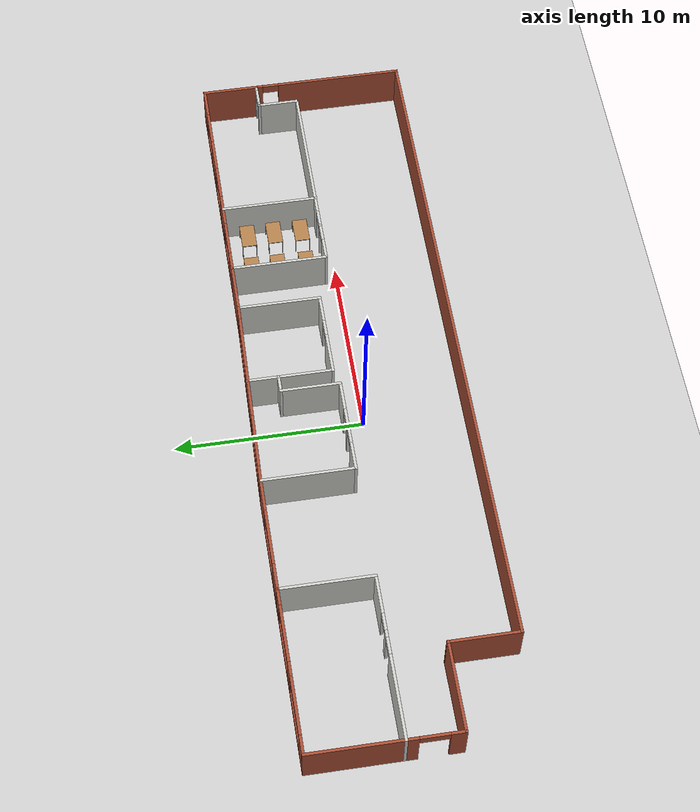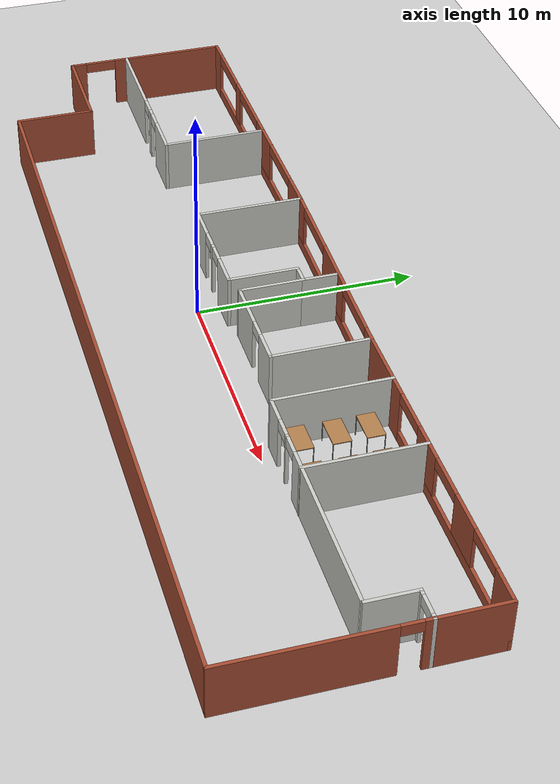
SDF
<sdf version="1.6">
 <world name="default">
  <light name="sun" type="directional">
   <pose>0 0 10 0 -0 0</pose>
   <diffuse>0.8 0.8 0.8 1</diffuse>
   <specular>0.1 0.1 0.1 1</specular>
   <attenuation>
    <range>1000</range>
    <constant>0.9</constant>
    <linear>0.01</linear>
    <quadratic>0.001</quadratic>
   </attenuation>
   <direction>-0.5 0.5 -1</direction>
  </light>
  <model name="ground_plane">
   <static>1</static>
   <link name="link">
    <collision name="collision">
     <geometry><plane><normal>0 0 1</normal><size>100 100</size></plane></geometry>
     <surface><friction><ode><mu>100</mu><mu2>50</mu2></ode></friction></surface>
    </collision>
    <visual name="visual">
     <cast_shadows>0</cast_shadows>
     <geometry><plane><normal>0 0 1</normal><size>100 100</size></plane></geometry>
     <material>
      <script><uri>file://media/materials/scripts/gazebo.material</uri><name>Gazebo/Grey</name></script>
     </material>
    </visual>
   </link>
  </model>
  <gravity>0 0 -9.8</gravity>
  <magnetic_field>6e-06 2.3e-05 -4.2e-05</magnetic_field>
  <atmosphere type="adiabatic"/>
  <physics name="default_physics" default="0" type="ode">
   <max_step_size>0.001</max_step_size>
   <real_time_factor>1</real_time_factor>
   <real_time_update_rate>1000</real_time_update_rate>
  </physics>
  <scene><ambient>0.4 0.4 0.4 1</ambient><background>0.7 0.7 0.7 1</background><shadows>1</shadows></scene>
  <spherical_coordinates>
   <surface_model>EARTH_WGS84</surface_model>
   <latitude_deg>0</latitude_deg>
   <longitude_deg>0</longitude_deg>
   <elevation>0</elevation>
   <heading_deg>0</heading_deg>
  </spherical_coordinates>
  <model name="match_2">
   <pose>1.52494 0.279926 0 0 -0 0</pose>
   <link name="Wall_0">
    <pose>13.175 0.299122 0 0 -0 3.14159</pose>
    <visual name="Wall_0_Visual_0">
     <pose>-1.5933 0 1.25 0 -0 0</pose>
     <geometry><box><size>7.8134 0.15 2.5</size></box></geometry>
     <material>
      <script><uri>file://media/materials/scripts/gazebo.material</uri><name>Gazebo/CeilingTiled</name></script>
      <ambient>1 1 1 1</ambient>
     </material>
    </visual>
    <collision name="Wall_0_Collision_0">
     <geometry><box><size>7.8134 0.15 2.5</size></box></geometry>
     <pose>-1.5933 0 1.25 0 -0 0</pose>
    </collision>
    <visual name="Wall_0_Visual_1">
     <pose>3.27754 0 1.25 0 -0 0</pose>
     <geometry><box><size>0.128288 0.15 2.5</size></box></geometry>
     <material>
      <script><uri>file://media/materials/scripts/gazebo.material</uri><name>Gazebo/CeilingTiled</name></script>
      <ambient>1 1 1 1</ambient>
     </material>
    </visual>
    <collision name="Wall_0_Collision_1">
     <geometry><box><size>0.128288 0.15 2.5</size></box></geometry>
     <pose>3.27754 0 1.25 0 -0 0</pose>
    </collision>
    <visual name="Wall_0_Visual_2">
     <pose>4.87084 0 1.25 0 -0 0</pose>
     <geometry><box><size>1.25831 0.15 2.5</size></box></geometry>
     <material>
      <script><uri>file://media/materials/scripts/gazebo.material</uri><name>Gazebo/CeilingTiled</name></script>
      <ambient>1 1 1 1</ambient>
     </material>
    </visual>
    <collision name="Wall_0_Collision_2">
     <geometry><box><size>1.25831 0.15 2.5</size></box></geometry>
     <pose>4.87084 0 1.25 0 -0 0</pose>
    </collision>
    <visual name="Wall_0_Visual_3">
     <pose>2.7634 0 2.25 0 -0 0</pose>
     <geometry><box><size>0.9 0.15 0.5</size></box></geometry>
     <material>
      <script><uri>file://media/materials/scripts/gazebo.material</uri><name>Gazebo/CeilingTiled</name></script>
      <ambient>1 1 1 1</ambient>
     </material>
    </visual>
    <collision name="Wall_0_Collision_3">
     <geometry><box><size>0.9 0.15 0.5</size></box></geometry>
     <pose>2.7634 0 2.25 0 -0 0</pose>
    </collision>
    <visual name="Wall_0_Visual_4">
     <pose>3.79169 0 2.25 0 -0 0</pose>
     <geometry><box><size>0.9 0.15 0.5</size></box></geometry>
     <material>
      <script><uri>file://media/materials/scripts/gazebo.material</uri><name>Gazebo/CeilingTiled</name></script>
      <ambient>1 1 1 1</ambient>
     </material>
    </visual>
    <collision name="Wall_0_Collision_4">
     <geometry><box><size>0.9 0.15 0.5</size></box></geometry>
     <pose>3.79169 0 2.25 0 -0 0</pose>
    </collision>
   </link>
   <link name="Wall_1">
    <collision name="Wall_1_Collision">
     <geometry><box><size>5.25 0.15 2.5</size></box></geometry>
     <pose>0 0 1.25 0 -0 0</pose>
    </collision>
    <visual name="Wall_1_Visual">
     <pose>0 0 1.25 0 -0 0</pose>
     <geometry><box><size>5.25 0.15 2.5</size></box></geometry>
     <material>
      <script><uri>file://media/materials/scripts/gazebo.material</uri><name>Gazebo/CeilingTiled</name></script>
      <ambient>1 1 1 1</ambient>
     </material>
    </visual>
    <pose>7.75 2.84912 0 0 -0 1.5708</pose>
   </link>
   <link name="Wall_10">
    <pose>-8.45 5.64912 0 0 -0 3.14159</pose>
    <visual name="Wall_10_Visual_0">
     <pose>-2.23689 0 1.25 0 -0 0</pose>
     <geometry><box><size>1.77623 0.15 2.5</size></box></geometry>
     <material>
      <script><uri>file://media/materials/scripts/gazebo.material</uri><name>Gazebo/Bricks</name></script>
      <ambient>1 1 1 1</ambient>
     </material>
    </visual>
    <collision name="Wall_10_Collision_0">
     <geometry><box><size>1.77623 0.15 2.5</size></box></geometry>
     <pose>-2.23689 0 1.25 0 -0 0</pose>
    </collision>
    <visual name="Wall_10_Visual_1">
     <pose>0.888114 0 0.25 0 -0 0</pose>
     <geometry><box><size>4.47377 0.15 0.5</size></box></geometry>
     <material>
      <script><uri>file://media/materials/scripts/gazebo.material</uri><name>Gazebo/Bricks</name></script>
      <ambient>1 1 1 1</ambient>
     </material>
    </visual>
    <collision name="Wall_10_Collision_1">
     <geometry><box><size>4.47377 0.15 0.5</size></box></geometry>
     <pose>0.888114 0 0.25 0 -0 0</pose>
    </collision>
    <visual name="Wall_10_Visual_2">
     <pose>2.38811 0 1.5 0 -0 0</pose>
     <geometry><box><size>1.47377 0.15 2</size></box></geometry>
     <material>
      <script><uri>file://media/materials/scripts/gazebo.material</uri><name>Gazebo/Bricks</name></script>
      <ambient>1 1 1 1</ambient>
     </material>
    </visual>
    <collision name="Wall_10_Collision_2">
     <geometry><box><size>1.47377 0.15 2</size></box></geometry>
     <pose>2.38811 0 1.5 0 -0 0</pose>
    </collision>
    <visual name="Wall_10_Visual_3">
     <pose>0.151228 0 2.25 0 -0 0</pose>
     <geometry><box><size>3 0.15 0.5</size></box></geometry>
     <material>
      <script><uri>file://media/materials/scripts/gazebo.material</uri><name>Gazebo/Bricks</name></script>
      <ambient>1 1 1 1</ambient>
     </material>
    </visual>
    <collision name="Wall_10_Collision_3">
     <geometry><box><size>3 0.15 0.5</size></box></geometry>
     <pose>0.151228 0 2.25 0 -0 0</pose>
    </collision>
   </link>
   <link name="Wall_11">
    <collision name="Wall_11_Collision">
     <geometry><box><size>5 0.15 2.5</size></box></geometry>
     <pose>0 0 1.25 0 -0 0</pose>
    </collision>
    <visual name="Wall_11_Visual">
     <pose>0 0 1.25 0 -0 0</pose>
     <geometry><box><size>5 0.15 2.5</size></box></geometry>
     <material>
      <script><uri>file://media/materials/scripts/gazebo.material</uri><name>Gazebo/CeilingTiled</name></script>
      <ambient>1 1 1 1</ambient>
     </material>
    </visual>
    <pose>-11.5 3.22412 0 0 0 -1.5708</pose>
   </link>
   <link name="Wall_12">
    <pose>-15.8 0.799122 0 0 -0 3.14159</pose>
    <visual name="Wall_12_Visual_0">
     <pose>-3.32042 0 1.25 0 -0 0</pose>
     <geometry><box><size>2.10915 0.15 2.5</size></box></geometry>
     <material>
      <script><uri>file://media/materials/scripts/gazebo.material</uri><name>Gazebo/CeilingTiled</name></script>
      <ambient>1 1 1 1</ambient>
     </material>
    </visual>
    <collision name="Wall_12_Collision_0">
     <geometry><box><size>2.10915 0.15 2.5</size></box></geometry>
     <pose>-3.32042 0 1.25 0 -0 0</pose>
    </collision>
    <visual name="Wall_12_Visual_1">
     <pose>-1.17223 0 1.25 0 -0 0</pose>
     <geometry><box><size>0.387222 0.15 2.5</size></box></geometry>
     <material>
      <script><uri>file://media/materials/scripts/gazebo.material</uri><name>Gazebo/CeilingTiled</name></script>
      <ambient>1 1 1 1</ambient>
     </material>
    </visual>
    <collision name="Wall_12_Collision_1">
     <geometry><box><size>0.387222 0.15 2.5</size></box></geometry>
     <pose>-1.17223 0 1.25 0 -0 0</pose>
    </collision>
    <visual name="Wall_12_Visual_2">
     <pose>2.14819 0 1.25 0 -0 0</pose>
     <geometry><box><size>4.45362 0.15 2.5</size></box></geometry>
     <material>
      <script><uri>file://media/materials/scripts/gazebo.material</uri><name>Gazebo/CeilingTiled</name></script>
      <ambient>1 1 1 1</ambient>
     </material>
    </visual>
    <collision name="Wall_12_Collision_2">
     <geometry><box><size>4.45362 0.15 2.5</size></box></geometry>
     <pose>2.14819 0 1.25 0 -0 0</pose>
    </collision>
    <visual name="Wall_12_Visual_3">
     <pose>-1.81584 0 2.25 0 -0 0</pose>
     <geometry><box><size>0.9 0.15 0.5</size></box></geometry>
     <material>
      <script><uri>file://media/materials/scripts/gazebo.material</uri><name>Gazebo/CeilingTiled</name></script>
      <ambient>1 1 1 1</ambient>
     </material>
    </visual>
    <collision name="Wall_12_Collision_3">
     <geometry><box><size>0.9 0.15 0.5</size></box></geometry>
     <pose>-1.81584 0 2.25 0 -0 0</pose>
    </collision>
    <visual name="Wall_12_Visual_4">
     <pose>-0.528624 0 2.25 0 -0 0</pose>
     <geometry><box><size>0.9 0.15 0.5</size></box></geometry>
     <material>
      <script><uri>file://media/materials/scripts/gazebo.material</uri><name>Gazebo/CeilingTiled</name></script>
      <ambient>1 1 1 1</ambient>
     </material>
    </visual>
    <collision name="Wall_12_Collision_4">
     <geometry><box><size>0.9 0.15 0.5</size></box></geometry>
     <pose>-0.528624 0 2.25 0 -0 0</pose>
    </collision>
   </link>
   <link name="Wall_13">
    <pose>-20.1 -0.625878 0 0 0 -1.5708</pose>
    <visual name="Wall_13_Visual_0">
     <pose>-1.14846 0 1.25 0 -0 0</pose>
     <geometry><box><size>0.703089 0.15 2.5</size></box></geometry>
     <material>
      <script><uri>file://media/materials/scripts/gazebo.material</uri><name>Gazebo/Bricks</name></script>
      <ambient>1 1 1 1</ambient>
     </material>
    </visual>
    <collision name="Wall_13_Collision_0">
     <geometry><box><size>0.703089 0.15 2.5</size></box></geometry>
     <pose>-1.14846 0 1.25 0 -0 0</pose>
    </collision>
    <visual name="Wall_13_Visual_1">
     <pose>1.10154 0 1.25 0 -0 0</pose>
     <geometry><box><size>0.796911 0.15 2.5</size></box></geometry>
     <material>
      <script><uri>file://media/materials/scripts/gazebo.material</uri><name>Gazebo/Bricks</name></script>
      <ambient>1 1 1 1</ambient>
     </material>
    </visual>
    <collision name="Wall_13_Collision_1">
     <geometry><box><size>0.796911 0.15 2.5</size></box></geometry>
     <pose>1.10154 0 1.25 0 -0 0</pose>
    </collision>
    <visual name="Wall_13_Visual_2">
     <pose>-0.046911 0 2.25 0 -0 0</pose>
     <geometry><box><size>1.5 0.15 0.5</size></box></geometry>
     <material>
      <script><uri>file://media/materials/scripts/gazebo.material</uri><name>Gazebo/Bricks</name></script>
      <ambient>1 1 1 1</ambient>
     </material>
    </visual>
    <collision name="Wall_13_Collision_2">
     <geometry><box><size>1.5 0.15 0.5</size></box></geometry>
     <pose>-0.046911 0 2.25 0 -0 0</pose>
    </collision>
   </link>
   <link name="Wall_14">
    <collision name="Wall_14_Collision">
     <geometry><box><size>4.75 0.15 2.5</size></box></geometry>
     <pose>0 0 1.25 0 -0 0</pose>
    </collision>
    <visual name="Wall_14_Visual">
     <pose>0 0 1.25 0 -0 0</pose>
     <geometry><box><size>4.75 0.15 2.5</size></box></geometry>
     <material>
      <script><uri>file://media/materials/scripts/gazebo.material</uri><name>Gazebo/Bricks</name></script>
      <ambient>1 1 1 1</ambient>
     </material>
    </visual>
    <pose>-17.8 -2.05088 0 0 -0 0</pose>
   </link>
   <link name="Wall_15">
    <collision name="Wall_15_Collision">
     <geometry><box><size>3.75 0.15 2.5</size></box></geometry>
     <pose>0 0 1.25 0 -0 0</pose>
    </collision>
    <visual name="Wall_15_Visual">
     <pose>0 0 1.25 0 -0 0</pose>
     <geometry><box><size>3.75 0.15 2.5</size></box></geometry>
     <material>
      <script><uri>file://media/materials/scripts/gazebo.material</uri><name>Gazebo/Bricks</name></script>
      <ambient>1 1 1 1</ambient>
     </material>
    </visual>
    <pose>-15.5 -3.85088 0 0 0 -1.5708</pose>
   </link>
   <link name="Wall_16">
    <collision name="Wall_16_Collision">
     <geometry><box><size>35.75 0.15 2.5</size></box></geometry>
     <pose>0 0 1.25 0 -0 0</pose>
    </collision>
    <visual name="Wall_16_Visual">
     <pose>0 0 1.25 0 -0 0</pose>
     <geometry><box><size>35.75 0.15 2.5</size></box></geometry>
     <material>
      <script><uri>file://media/materials/scripts/gazebo.material</uri><name>Gazebo/Bricks</name></script>
      <ambient>1 1 1 1</ambient>
     </material>
    </visual>
    <pose>2.3 -5.65088 0 0 -0 0</pose>
   </link>
   <link name="Wall_17">
    <pose>20.1 -1.60088 0 0 -0 1.5708</pose>
    <visual name="Wall_17_Visual_0">
     <pose>-0.667736 0 1.25 0 -0 0</pose>
     <geometry><box><size>6.91453 0.15 2.5</size></box></geometry>
     <material>
      <script><uri>file://media/materials/scripts/gazebo.material</uri><name>Gazebo/Bricks</name></script>
      <ambient>1 1 1 1</ambient>
     </material>
    </visual>
    <collision name="Wall_17_Collision_0">
     <geometry><box><size>6.91453 0.15 2.5</size></box></geometry>
     <pose>-0.667736 0 1.25 0 -0 0</pose>
    </collision>
    <visual name="Wall_17_Visual_1">
     <pose>3.90726 0 1.25 0 -0 0</pose>
     <geometry><box><size>0.435472 0.15 2.5</size></box></geometry>
     <material>
      <script><uri>file://media/materials/scripts/gazebo.material</uri><name>Gazebo/Bricks</name></script>
      <ambient>1 1 1 1</ambient>
     </material>
    </visual>
    <collision name="Wall_17_Collision_1">
     <geometry><box><size>0.435472 0.15 2.5</size></box></geometry>
     <pose>3.90726 0 1.25 0 -0 0</pose>
    </collision>
    <visual name="Wall_17_Visual_2">
     <pose>3.23953 0 2.25 0 -0 0</pose>
     <geometry><box><size>0.9 0.15 0.5</size></box></geometry>
     <material>
      <script><uri>file://media/materials/scripts/gazebo.material</uri><name>Gazebo/Bricks</name></script>
      <ambient>1 1 1 1</ambient>
     </material>
    </visual>
    <collision name="Wall_17_Collision_2">
     <geometry><box><size>0.9 0.15 0.5</size></box></geometry>
     <pose>3.23953 0 2.25 0 -0 0</pose>
    </collision>
   </link>
   <link name="Wall_18">
    <pose>19.425 2.44912 0 0 -0 3.14159</pose>
    <visual name="Wall_18_Visual_0">
     <pose>-0.601949 0 1.25 0 -0 0</pose>
     <geometry><box><size>0.296101 0.15 2.5</size></box></geometry>
     <material>
      <script><uri>file://media/materials/scripts/gazebo.material</uri><name>Gazebo/CeilingTiled</name></script>
      <ambient>1 1 1 1</ambient>
     </material>
    </visual>
    <collision name="Wall_18_Collision_0">
     <geometry><box><size>0.296101 0.15 2.5</size></box></geometry>
     <pose>-0.601949 0 1.25 0 -0 0</pose>
    </collision>
    <visual name="Wall_18_Visual_1">
     <pose>0.598051 0 1.25 0 -0 0</pose>
     <geometry><box><size>0.303899 0.15 2.5</size></box></geometry>
     <material>
      <script><uri>file://media/materials/scripts/gazebo.material</uri><name>Gazebo/CeilingTiled</name></script>
      <ambient>1 1 1 1</ambient>
     </material>
    </visual>
    <collision name="Wall_18_Collision_1">
     <geometry><box><size>0.303899 0.15 2.5</size></box></geometry>
     <pose>0.598051 0 1.25 0 -0 0</pose>
    </collision>
    <visual name="Wall_18_Visual_2">
     <pose>-0.003899 0 2.25 0 -0 0</pose>
     <geometry><box><size>0.9 0.15 0.5</size></box></geometry>
     <material>
      <script><uri>file://media/materials/scripts/gazebo.material</uri><name>Gazebo/CeilingTiled</name></script>
      <ambient>1 1 1 1</ambient>
     </material>
    </visual>
    <collision name="Wall_18_Collision_2">
     <geometry><box><size>0.9 0.15 0.5</size></box></geometry>
     <pose>-0.003899 0 2.25 0 -0 0</pose>
    </collision>
   </link>
   <link name="Wall_19">
    <collision name="Wall_19_Collision">
     <geometry><box><size>2.25 0.15 2.5</size></box></geometry>
     <pose>0 0 1.25 0 -0 0</pose>
    </collision>
    <visual name="Wall_19_Visual">
     <pose>0 0 1.25 0 -0 0</pose>
     <geometry><box><size>2.25 0.15 2.5</size></box></geometry>
     <material>
      <script><uri>file://media/materials/scripts/gazebo.material</uri><name>Gazebo/CeilingTiled</name></script>
      <ambient>1 1 1 1</ambient>
     </material>
    </visual>
    <pose>18.75 1.39912 0 0 0 -1.5708</pose>
   </link>
   <link name="Wall_2">
    <collision name="Wall_2_Collision">
     <geometry><box><size>2.75 0.15 2.5</size></box></geometry>
     <pose>0 0 1.25 0 -0 0</pose>
    </collision>
    <visual name="Wall_2_Visual">
     <pose>0 0 1.25 0 -0 0</pose>
     <geometry><box><size>2.75 0.15 2.5</size></box></geometry>
     <material>
      <script><uri>file://media/materials/scripts/gazebo.material</uri><name>Gazebo/Bricks</name></script>
      <ambient>1 1 1 1</ambient>
     </material>
    </visual>
    <pose>6.45 5.39912 0 0 -0 3.14159</pose>
   </link>
   <link name="Wall_21">
    <pose>13.925 5.39912 0 0 -0 0</pose>
    <visual name="Wall_21_Visual_0">
     <pose>-5.70798 0 1.25 0 -0 0</pose>
     <geometry><box><size>1.08404 0.15 2.5</size></box></geometry>
     <material>
      <script><uri>file://media/materials/scripts/gazebo.material</uri><name>Gazebo/Bricks</name></script>
      <ambient>1 1 1 1</ambient>
     </material>
    </visual>
    <collision name="Wall_21_Collision_0">
     <geometry><box><size>1.08404 0.15 2.5</size></box></geometry>
     <pose>-5.70798 0 1.25 0 -0 0</pose>
    </collision>
    <visual name="Wall_21_Visual_1">
     <pose>0.542017 0 0.25 0 -0 0</pose>
     <geometry><box><size>11.416 0.15 0.5</size></box></geometry>
     <material>
      <script><uri>file://media/materials/scripts/gazebo.material</uri><name>Gazebo/Bricks</name></script>
      <ambient>1 1 1 1</ambient>
     </material>
    </visual>
    <collision name="Wall_21_Collision_1">
     <geometry><box><size>11.416 0.15 0.5</size></box></geometry>
     <pose>0.542017 0 0.25 0 -0 0</pose>
    </collision>
    <visual name="Wall_21_Visual_2">
     <pose>-2.22804 0 1.5 0 -0 0</pose>
     <geometry><box><size>1.87586 0.15 2</size></box></geometry>
     <material>
      <script><uri>file://media/materials/scripts/gazebo.material</uri><name>Gazebo/Bricks</name></script>
      <ambient>1 1 1 1</ambient>
     </material>
    </visual>
    <collision name="Wall_21_Collision_2">
     <geometry><box><size>1.87586 0.15 2</size></box></geometry>
     <pose>-2.22804 0 1.5 0 -0 0</pose>
    </collision>
    <visual name="Wall_21_Visual_3">
     <pose>1.64782 0 1.5 0 -0 0</pose>
     <geometry><box><size>1.87586 0.15 2</size></box></geometry>
     <material>
      <script><uri>file://media/materials/scripts/gazebo.material</uri><name>Gazebo/Bricks</name></script>
      <ambient>1 1 1 1</ambient>
     </material>
    </visual>
    <collision name="Wall_21_Collision_3">
     <geometry><box><size>1.87586 0.15 2</size></box></geometry>
     <pose>1.64782 0 1.5 0 -0 0</pose>
    </collision>
    <visual name="Wall_21_Visual_4">
     <pose>5.41787 0 1.5 0 -0 0</pose>
     <geometry><box><size>1.66425 0.15 2</size></box></geometry>
     <material>
      <script><uri>file://media/materials/scripts/gazebo.material</uri><name>Gazebo/Bricks</name></script>
      <ambient>1 1 1 1</ambient>
     </material>
    </visual>
    <collision name="Wall_21_Collision_4">
     <geometry><box><size>1.66425 0.15 2</size></box></geometry>
     <pose>5.41787 0 1.5 0 -0 0</pose>
    </collision>
    <visual name="Wall_21_Visual_5">
     <pose>-4.16596 0 2.25 0 -0 0</pose>
     <geometry><box><size>2 0.15 0.5</size></box></geometry>
     <material>
      <script><uri>file://media/materials/scripts/gazebo.material</uri><name>Gazebo/Bricks</name></script>
      <ambient>1 1 1 1</ambient>
     </material>
    </visual>
    <collision name="Wall_21_Collision_5">
     <geometry><box><size>2 0.15 0.5</size></box></geometry>
     <pose>-4.16596 0 2.25 0 -0 0</pose>
    </collision>
    <visual name="Wall_21_Visual_6">
     <pose>-0.29011 0 2.25 0 -0 0</pose>
     <geometry><box><size>2 0.15 0.5</size></box></geometry>
     <material>
      <script><uri>file://media/materials/scripts/gazebo.material</uri><name>Gazebo/Bricks</name></script>
      <ambient>1 1 1 1</ambient>
     </material>
    </visual>
    <collision name="Wall_21_Collision_6">
     <geometry><box><size>2 0.15 0.5</size></box></geometry>
     <pose>-0.29011 0 2.25 0 -0 0</pose>
    </collision>
    <visual name="Wall_21_Visual_7">
     <pose>3.58575 0 2.25 0 -0 0</pose>
     <geometry><box><size>2 0.15 0.5</size></box></geometry>
     <material>
      <script><uri>file://media/materials/scripts/gazebo.material</uri><name>Gazebo/Bricks</name></script>
      <ambient>1 1 1 1</ambient>
     </material>
    </visual>
    <collision name="Wall_21_Collision_7">
     <geometry><box><size>2 0.15 0.5</size></box></geometry>
     <pose>3.58575 0 2.25 0 -0 0</pose>
    </collision>
   </link>
   <link name="Wall_22">
    <collision name="Wall_22_Collision">
     <geometry><box><size>3.1 0.15 2.5</size></box></geometry>
     <pose>0 0 1.25 0 -0 0</pose>
    </collision>
    <visual name="Wall_22_Visual">
     <pose>0 0 1.25 0 -0 0</pose>
     <geometry><box><size>3.1 0.15 2.5</size></box></geometry>
     <material>
      <script><uri>file://media/materials/scripts/gazebo.material</uri><name>Gazebo/Bricks</name></script>
      <ambient>1 1 1 1</ambient>
     </material>
    </visual>
    <pose>20.1 3.92412 0 0 0 -1.5708</pose>
   </link>
   <link name="Wall_24">
    <pose>-0.125 5.52412 0 0 -0 3.1179</pose>
    <visual name="Wall_24_Visual_0">
     <pose>-4.94833 0 1.25 0 -0 0</pose>
     <geometry><box><size>0.806307 0.15 2.5</size></box></geometry>
     <material>
      <script><uri>file://media/materials/scripts/gazebo.material</uri><name>Gazebo/Bricks</name></script>
      <ambient>1 1 1 1</ambient>
     </material>
    </visual>
    <collision name="Wall_24_Collision_0">
     <geometry><box><size>0.806307 0.15 2.5</size></box></geometry>
     <pose>-4.94833 0 1.25 0 -0 0</pose>
    </collision>
    <visual name="Wall_24_Visual_1">
     <pose>0.403153 0 0.25 0 -0 0</pose>
     <geometry><box><size>9.89666 0.15 0.5</size></box></geometry>
     <material>
      <script><uri>file://media/materials/scripts/gazebo.material</uri><name>Gazebo/Bricks</name></script>
      <ambient>1 1 1 1</ambient>
     </material>
    </visual>
    <collision name="Wall_24_Collision_1">
     <geometry><box><size>9.89666 0.15 0.5</size></box></geometry>
     <pose>0.403153 0 0.25 0 -0 0</pose>
    </collision>
    <visual name="Wall_24_Visual_2">
     <pose>-0.056462 0 1.5 0 -0 0</pose>
     <geometry><box><size>2.97742 0.15 2</size></box></geometry>
     <material>
      <script><uri>file://media/materials/scripts/gazebo.material</uri><name>Gazebo/Bricks</name></script>
      <ambient>1 1 1 1</ambient>
     </material>
    </visual>
    <collision name="Wall_24_Collision_2">
     <geometry><box><size>2.97742 0.15 2</size></box></geometry>
     <pose>-0.056462 0 1.5 0 -0 0</pose>
    </collision>
    <visual name="Wall_24_Visual_3">
     <pose>4.89187 0 1.5 0 -0 0</pose>
     <geometry><box><size>0.919231 0.15 2</size></box></geometry>
     <material>
      <script><uri>file://media/materials/scripts/gazebo.material</uri><name>Gazebo/Bricks</name></script>
      <ambient>1 1 1 1</ambient>
     </material>
    </visual>
    <collision name="Wall_24_Collision_3">
     <geometry><box><size>0.919231 0.15 2</size></box></geometry>
     <pose>4.89187 0 1.5 0 -0 0</pose>
    </collision>
    <visual name="Wall_24_Visual_4">
     <pose>-3.04517 0 2.25 0 -0 0</pose>
     <geometry><box><size>3 0.15 0.5</size></box></geometry>
     <material>
      <script><uri>file://media/materials/scripts/gazebo.material</uri><name>Gazebo/Bricks</name></script>
      <ambient>1 1 1 1</ambient>
     </material>
    </visual>
    <collision name="Wall_24_Collision_4">
     <geometry><box><size>3 0.15 0.5</size></box></geometry>
     <pose>-3.04517 0 2.25 0 -0 0</pose>
    </collision>
    <visual name="Wall_24_Visual_5">
     <pose>2.93225 0 2.25 0 -0 0</pose>
     <geometry><box><size>3 0.15 0.5</size></box></geometry>
     <material>
      <script><uri>file://media/materials/scripts/gazebo.material</uri><name>Gazebo/Bricks</name></script>
      <ambient>1 1 1 1</ambient>
     </material>
    </visual>
    <collision name="Wall_24_Collision_5">
     <geometry><box><size>3 0.15 0.5</size></box></geometry>
     <pose>2.93225 0 2.25 0 -0 0</pose>
    </collision>
   </link>
   <link name="Wall_26">
    <collision name="Wall_26_Collision">
     <geometry><box><size>5 0.15 2.5</size></box></geometry>
     <pose>0 0 1.25 0 -0 0</pose>
    </collision>
    <visual name="Wall_26_Visual">
     <pose>0 0 1.25 0 -0 0</pose>
     <geometry><box><size>5 0.15 2.5</size></box></geometry>
     <material>
      <script><uri>file://media/materials/scripts/gazebo.material</uri><name>Gazebo/Bricks</name></script>
      <ambient>1 1 1 1</ambient>
     </material>
    </visual>
    <pose>-20.1 3.22412 0 0 -0 1.5708</pose>
   </link>
   <link name="Wall_27">
    <pose>-15.8 5.64912 0 0 -0 0</pose>
    <visual name="Wall_27_Visual_0">
     <pose>-3.84989 0 1.25 0 -0 0</pose>
     <geometry><box><size>1.05022 0.15 2.5</size></box></geometry>
     <material>
      <script><uri>file://media/materials/scripts/gazebo.material</uri><name>Gazebo/Bricks</name></script>
      <ambient>1 1 1 1</ambient>
     </material>
    </visual>
    <collision name="Wall_27_Collision_0">
     <geometry><box><size>1.05022 0.15 2.5</size></box></geometry>
     <pose>-3.84989 0 1.25 0 -0 0</pose>
    </collision>
    <visual name="Wall_27_Visual_1">
     <pose>0.525109 0 0.25 0 -0 0</pose>
     <geometry><box><size>7.69978 0.15 0.5</size></box></geometry>
     <material>
      <script><uri>file://media/materials/scripts/gazebo.material</uri><name>Gazebo/Bricks</name></script>
      <ambient>1 1 1 1</ambient>
     </material>
    </visual>
    <collision name="Wall_27_Collision_1">
     <geometry><box><size>7.69978 0.15 0.5</size></box></geometry>
     <pose>0.525109 0 0.25 0 -0 0</pose>
    </collision>
    <visual name="Wall_27_Visual_2">
     <pose>0.047541 0 1.5 0 -0 0</pose>
     <geometry><box><size>0.744645 0.15 2</size></box></geometry>
     <material>
      <script><uri>file://media/materials/scripts/gazebo.material</uri><name>Gazebo/Bricks</name></script>
      <ambient>1 1 1 1</ambient>
     </material>
    </visual>
    <collision name="Wall_27_Collision_2">
     <geometry><box><size>0.744645 0.15 2</size></box></geometry>
     <pose>0.047541 0 1.5 0 -0 0</pose>
    </collision>
    <visual name="Wall_27_Visual_3">
     <pose>3.89743 0 1.5 0 -0 0</pose>
     <geometry><box><size>0.955136 0.15 2</size></box></geometry>
     <material>
      <script><uri>file://media/materials/scripts/gazebo.material</uri><name>Gazebo/Bricks</name></script>
      <ambient>1 1 1 1</ambient>
     </material>
    </visual>
    <collision name="Wall_27_Collision_3">
     <geometry><box><size>0.955136 0.15 2</size></box></geometry>
     <pose>3.89743 0 1.5 0 -0 0</pose>
    </collision>
    <visual name="Wall_27_Visual_4">
     <pose>-1.82478 0 2.25 0 -0 0</pose>
     <geometry><box><size>3 0.15 0.5</size></box></geometry>
     <material>
      <script><uri>file://media/materials/scripts/gazebo.material</uri><name>Gazebo/Bricks</name></script>
      <ambient>1 1 1 1</ambient>
     </material>
    </visual>
    <collision name="Wall_27_Collision_4">
     <geometry><box><size>3 0.15 0.5</size></box></geometry>
     <pose>-1.82478 0 2.25 0 -0 0</pose>
    </collision>
    <visual name="Wall_27_Visual_5">
     <pose>1.91986 0 2.25 0 -0 0</pose>
     <geometry><box><size>3 0.15 0.5</size></box></geometry>
     <material>
      <script><uri>file://media/materials/scripts/gazebo.material</uri><name>Gazebo/Bricks</name></script>
      <ambient>1 1 1 1</ambient>
     </material>
    </visual>
    <collision name="Wall_27_Collision_5">
     <geometry><box><size>3 0.15 0.5</size></box></geometry>
     <pose>1.91986 0 2.25 0 -0 0</pose>
    </collision>
   </link>
   <link name="Wall_3">
    <collision name="Wall_3_Collision">
     <geometry><box><size>4.5 0.15 2.5</size></box></geometry>
     <pose>0 0 1.25 0 -0 0</pose>
    </collision>
    <visual name="Wall_3_Visual">
     <pose>0 0 1.25 0 -0 0</pose>
     <geometry><box><size>4.5 0.15 2.5</size></box></geometry>
     <material>
      <script><uri>file://media/materials/scripts/gazebo.material</uri><name>Gazebo/CeilingTiled</name></script>
      <ambient>1 1 1 1</ambient>
     </material>
    </visual>
    <pose>5.15 3.22412 0 0 0 -1.5708</pose>
   </link>
   <link name="Wall_31">
    <collision name="Wall_31_Collision">
     <geometry><box><size>5.25 0.15 2.5</size></box></geometry>
     <pose>0 0 1.25 0 -0 0</pose>
    </collision>
    <visual name="Wall_31_Visual">
     <pose>0 0 1.25 0 -0 0</pose>
     <geometry><box><size>5.25 0.15 2.5</size></box></geometry>
     <material>
      <script><uri>file://media/materials/scripts/gazebo.material</uri><name>Gazebo/CeilingTiled</name></script>
      <ambient>1 1 1 1</ambient>
     </material>
    </visual>
    <pose>11.7523 2.83202 0 0 -0 1.5708</pose>
   </link>
   <link name="Wall_33">
    <collision name="Wall_33_Collision">
     <geometry><box><size>1.75 0.15 2.5</size></box></geometry>
     <pose>0 0 1.25 0 -0 0</pose>
    </collision>
    <visual name="Wall_33_Visual">
     <pose>0 0 1.25 0 -0 0</pose>
     <geometry><box><size>1.75 0.15 2.5</size></box></geometry>
     <material>
      <script><uri>file://media/materials/scripts/gazebo.material</uri><name>Gazebo/CeilingTiled</name></script>
      <ambient>1 1 1 1</ambient>
     </material>
    </visual>
    <pose>0.55 4.69912 0 0 -0 1.5708</pose>
   </link>
   <link name="Wall_4">
    <pose>2.85 1.04912 0 0 -0 3.14159</pose>
    <visual name="Wall_4_Visual_0">
     <pose>-1.6029 0 1.25 0 -0 0</pose>
     <geometry><box><size>1.54419 0.15 2.5</size></box></geometry>
     <material>
      <script><uri>file://media/materials/scripts/gazebo.material</uri><name>Gazebo/CeilingTiled</name></script>
      <ambient>1 1 1 1</ambient>
     </material>
    </visual>
    <collision name="Wall_4_Collision_0">
     <geometry><box><size>1.54419 0.15 2.5</size></box></geometry>
     <pose>-1.6029 0 1.25 0 -0 0</pose>
    </collision>
    <visual name="Wall_4_Visual_1">
     <pose>1.2221 0 1.25 0 -0 0</pose>
     <geometry><box><size>2.30581 0.15 2.5</size></box></geometry>
     <material>
      <script><uri>file://media/materials/scripts/gazebo.material</uri><name>Gazebo/CeilingTiled</name></script>
      <ambient>1 1 1 1</ambient>
     </material>
    </visual>
    <collision name="Wall_4_Collision_1">
     <geometry><box><size>2.30581 0.15 2.5</size></box></geometry>
     <pose>1.2221 0 1.25 0 -0 0</pose>
    </collision>
    <visual name="Wall_4_Visual_2">
     <pose>-0.380807 0 2.25 0 -0 0</pose>
     <geometry><box><size>0.9 0.15 0.5</size></box></geometry>
     <material>
      <script><uri>file://media/materials/scripts/gazebo.material</uri><name>Gazebo/CeilingTiled</name></script>
      <ambient>1 1 1 1</ambient>
     </material>
    </visual>
    <collision name="Wall_4_Collision_2">
     <geometry><box><size>0.9 0.15 0.5</size></box></geometry>
     <pose>-0.380807 0 2.25 0 -0 0</pose>
    </collision>
   </link>
   <link name="Wall_5">
    <collision name="Wall_5_Collision">
     <geometry><box><size>3 0.15 2.5</size></box></geometry>
     <pose>0 0 1.25 0 -0 0</pose>
    </collision>
    <visual name="Wall_5_Visual">
     <pose>0 0 1.25 0 -0 0</pose>
     <geometry><box><size>3 0.15 2.5</size></box></geometry>
     <material>
      <script><uri>file://media/materials/scripts/gazebo.material</uri><name>Gazebo/CeilingTiled</name></script>
      <ambient>1 1 1 1</ambient>
     </material>
    </visual>
    <pose>0.55 2.47412 0 0 -0 1.5708</pose>
   </link>
   <link name="Wall_6">
    <collision name="Wall_6_Collision">
     <geometry><box><size>1 0.15 2.5</size></box></geometry>
     <pose>0 0 1.25 0 -0 0</pose>
    </collision>
    <visual name="Wall_6_Visual">
     <pose>0 0 1.25 0 -0 0</pose>
     <geometry><box><size>1 0.15 2.5</size></box></geometry>
     <material>
      <script><uri>file://media/materials/scripts/gazebo.material</uri><name>Gazebo/CeilingTiled</name></script>
      <ambient>1 1 1 1</ambient>
     </material>
    </visual>
    <pose>0.125 3.89912 0 0 -0 3.14159</pose>
   </link>
   <link name="Wall_7">
    <collision name="Wall_7_Collision">
     <geometry><box><size>3.25 0.15 2.5</size></box></geometry>
     <pose>0 0 1.25 0 -0 0</pose>
    </collision>
    <visual name="Wall_7_Visual">
     <pose>0 0 1.25 0 -0 0</pose>
     <geometry><box><size>3.25 0.15 2.5</size></box></geometry>
     <material>
      <script><uri>file://media/materials/scripts/gazebo.material</uri><name>Gazebo/CeilingTiled</name></script>
      <ambient>1 1 1 1</ambient>
     </material>
    </visual>
    <pose>-0.299999 2.34912 0 0 0 -1.5708</pose>
   </link>
   <link name="Wall_8">
    <pose>-2.85 0.799122 0 0 -0 3.14159</pose>
    <visual name="Wall_8_Visual_0">
     <pose>-1.80193 0 1.25 0 -0 0</pose>
     <geometry><box><size>1.64615 0.15 2.5</size></box></geometry>
     <material>
      <script><uri>file://media/materials/scripts/gazebo.material</uri><name>Gazebo/CeilingTiled</name></script>
      <ambient>1 1 1 1</ambient>
     </material>
    </visual>
    <collision name="Wall_8_Collision_0">
     <geometry><box><size>1.64615 0.15 2.5</size></box></geometry>
     <pose>-1.80193 0 1.25 0 -0 0</pose>
    </collision>
    <visual name="Wall_8_Visual_1">
     <pose>0.030244 0 1.25 0 -0 0</pose>
     <geometry><box><size>0.218192 0.15 2.5</size></box></geometry>
     <material>
      <script><uri>file://media/materials/scripts/gazebo.material</uri><name>Gazebo/CeilingTiled</name></script>
      <ambient>1 1 1 1</ambient>
     </material>
    </visual>
    <collision name="Wall_8_Collision_1">
     <geometry><box><size>0.218192 0.15 2.5</size></box></geometry>
     <pose>0.030244 0 1.25 0 -0 0</pose>
    </collision>
    <visual name="Wall_8_Visual_2">
     <pose>1.83217 0 1.25 0 -0 0</pose>
     <geometry><box><size>1.58566 0.15 2.5</size></box></geometry>
     <material>
      <script><uri>file://media/materials/scripts/gazebo.material</uri><name>Gazebo/CeilingTiled</name></script>
      <ambient>1 1 1 1</ambient>
     </material>
    </visual>
    <collision name="Wall_8_Collision_2">
     <geometry><box><size>1.58566 0.15 2.5</size></box></geometry>
     <pose>1.83217 0 1.25 0 -0 0</pose>
    </collision>
    <visual name="Wall_8_Visual_3">
     <pose>-0.528852 0 2.25 0 -0 0</pose>
     <geometry><box><size>0.9 0.15 0.5</size></box></geometry>
     <material>
      <script><uri>file://media/materials/scripts/gazebo.material</uri><name>Gazebo/CeilingTiled</name></script>
      <ambient>1 1 1 1</ambient>
     </material>
    </visual>
    <collision name="Wall_8_Collision_3">
     <geometry><box><size>0.9 0.15 0.5</size></box></geometry>
     <pose>-0.528852 0 2.25 0 -0 0</pose>
    </collision>
    <visual name="Wall_8_Visual_4">
     <pose>0.589341 0 2.25 0 -0 0</pose>
     <geometry><box><size>0.9 0.15 0.5</size></box></geometry>
     <material>
      <script><uri>file://media/materials/scripts/gazebo.material</uri><name>Gazebo/CeilingTiled</name></script>
      <ambient>1 1 1 1</ambient>
     </material>
    </visual>
    <collision name="Wall_8_Collision_4">
     <geometry><box><size>0.9 0.15 0.5</size></box></geometry>
     <pose>0.589341 0 2.25 0 -0 0</pose>
    </collision>
   </link>
   <link name="Wall_9">
    <collision name="Wall_9_Collision">
     <geometry><box><size>5 0.15 2.5</size></box></geometry>
     <pose>0 0 1.25 0 -0 0</pose>
    </collision>
    <visual name="Wall_9_Visual">
     <pose>0 0 1.25 0 -0 0</pose>
     <geometry><box><size>5 0.15 2.5</size></box></geometry>
     <material>
      <script><uri>file://media/materials/scripts/gazebo.material</uri><name>Gazebo/CeilingTiled</name></script>
      <ambient>1 1 1 1</ambient>
     </material>
    </visual>
    <pose>-5.4 3.22412 0 0 -0 1.5708</pose>
   </link>
   <static>1</static>
  </model>
  <model name="table">
   <static>0</static>
   <link name="link">
    <collision name="surface">
     <pose>0 0 1 0 -0 0</pose>
     <geometry><box><size>1.5 0.8 0.03</size></box></geometry>
     <surface><friction><ode><mu>0.6</mu><mu2>0.6</mu2></ode></friction></surface>
    </collision>
    <visual name="visual1">
     <pose>0 0 1 0 -0 0</pose>
     <geometry><box><size>1.4 0.8 0.04</size></box></geometry>
     <material>
      <script><uri>file://media/materials/scripts/gazebo.material</uri><name>Gazebo/Wood</name></script>
     </material>
    </visual>
    <collision name="front_left_leg">
     <pose>0.68 0.38 0.5 0 -0 0</pose>
     <geometry><cylinder><radius>0.02</radius><length>1</length></cylinder></geometry>
    </collision>
    <visual name="front_left_leg">
     <pose>0.68 0.38 0.5 0 -0 0</pose>
     <geometry><cylinder><radius>0.02</radius><length>1</length></cylinder></geometry>
     <material>
      <script><uri>file://media/materials/scripts/gazebo.material</uri><name>Gazebo/Grey</name></script>
     </material>
    </visual>
    <collision name="front_right_leg">
     <pose>0.68 -0.38 0.5 0 -0 0</pose>
     <geometry><cylinder><radius>0.02</radius><length>1</length></cylinder></geometry>
    </collision>
    <visual name="front_right_leg">
     <pose>0.68 -0.38 0.5 0 -0 0</pose>
     <geometry><cylinder><radius>0.02</radius><length>1</length></cylinder></geometry>
     <material>
      <script><uri>file://media/materials/scripts/gazebo.material</uri><name>Gazebo/Grey</name></script>
     </material>
    </visual>
    <collision name="back_right_leg">
     <pose>-0.68 -0.38 0.5 0 -0 0</pose>
     <geometry><cylinder><radius>0.02</radius><length>1</length></cylinder></geometry>
    </collision>
    <visual name="back_right_leg">
     <pose>-0.68 -0.38 0.5 0 -0 0</pose>
     <geometry><cylinder><radius>0.02</radius><length>1</length></cylinder></geometry>
     <material>
      <script><uri>file://media/materials/scripts/gazebo.material</uri><name>Gazebo/Grey</name></script>
     </material>
    </visual>
    <collision name="back_left_leg">
     <pose>-0.68 0.38 0.5 0 -0 0</pose>
     <geometry><cylinder><radius>0.02</radius><length>1</length></cylinder></geometry>
    </collision>
    <visual name="back_left_leg">
     <pose>-0.68 0.38 0.5 0 -0 0</pose>
     <geometry><cylinder><radius>0.02</radius><length>1</length></cylinder></geometry>
     <material>
      <script><uri>file://media/materials/scripts/gazebo.material</uri><name>Gazebo/Grey</name></script>
     </material>
    </visual>
    <inertial>
     <inertia><ixx>1</ixx><ixy>0</ixy><ixz>0</ixz><iyy>1</iyy><iyz>0</iyz><izz>1</izz></inertia>
     <mass>1</mass>
    </inertial>
   </link>
   <pose>12.3534 4.46676 -1e-06 -1e-06 1e-06 0</pose>
  </model>
  <model name="table_clone">
   <static>0</static>
   <link name="link">
    <collision name="surface">
     <pose>0 0 1 0 -0 0</pose>
     <geometry><box><size>1.5 0.8 0.03</size></box></geometry>
     <surface><friction><ode><mu>0.6</mu><mu2>0.6</mu2></ode></friction></surface>
    </collision>
    <visual name="visual1">
     <pose>0 0 1 0 -0 0</pose>
     <geometry><box><size>1.4 0.8 0.04</size></box></geometry>
     <material>
      <script><uri>file://media/materials/scripts/gazebo.material</uri><name>Gazebo/Wood</name></script>
     </material>
    </visual>
    <collision name="front_left_leg">
     <pose>0.68 0.38 0.5 0 -0 0</pose>
     <geometry><cylinder><radius>0.02</radius><length>1</length></cylinder></geometry>
    </collision>
    <visual name="front_left_leg">
     <pose>0.68 0.38 0.5 0 -0 0</pose>
     <geometry><cylinder><radius>0.02</radius><length>1</length></cylinder></geometry>
     <material>
      <script><uri>file://media/materials/scripts/gazebo.material</uri><name>Gazebo/Grey</name></script>
     </material>
    </visual>
    <collision name="front_right_leg">
     <pose>0.68 -0.38 0.5 0 -0 0</pose>
     <geometry><cylinder><radius>0.02</radius><length>1</length></cylinder></geometry>
    </collision>
    <visual name="front_right_leg">
     <pose>0.68 -0.38 0.5 0 -0 0</pose>
     <geometry><cylinder><radius>0.02</radius><length>1</length></cylinder></geometry>
     <material>
      <script><uri>file://media/materials/scripts/gazebo.material</uri><name>Gazebo/Grey</name></script>
     </material>
    </visual>
    <collision name="back_right_leg">
     <pose>-0.68 -0.38 0.5 0 -0 0</pose>
     <geometry><cylinder><radius>0.02</radius><length>1</length></cylinder></geometry>
    </collision>
    <visual name="back_right_leg">
     <pose>-0.68 -0.38 0.5 0 -0 0</pose>
     <geometry><cylinder><radius>0.02</radius><length>1</length></cylinder></geometry>
     <material>
      <script><uri>file://media/materials/scripts/gazebo.material</uri><name>Gazebo/Grey</name></script>
     </material>
    </visual>
    <collision name="back_left_leg">
     <pose>-0.68 0.38 0.5 0 -0 0</pose>
     <geometry><cylinder><radius>0.02</radius><length>1</length></cylinder></geometry>
    </collision>
    <visual name="back_left_leg">
     <pose>-0.68 0.38 0.5 0 -0 0</pose>
     <geometry><cylinder><radius>0.02</radius><length>1</length></cylinder></geometry>
     <material>
      <script><uri>file://media/materials/scripts/gazebo.material</uri><name>Gazebo/Grey</name></script>
     </material>
    </visual>
    <inertial>
     <inertia><ixx>1</ixx><ixy>0</ixy><ixz>0</ixz><iyy>1</iyy><iyz>0</iyz><izz>1</izz></inertia>
     <mass>1</mass>
    </inertial>
   </link>
   <pose>12.3735 3.01646 -9e-06 1e-06 -1e-06 0</pose>
  </model>
  <model name="table_clone_0">
   <static>0</static>
   <link name="link">
    <collision name="surface">
     <pose>0 0 1 0 -0 0</pose>
     <geometry><box><size>1.5 0.8 0.03</size></box></geometry>
     <surface><friction><ode><mu>0.6</mu><mu2>0.6</mu2></ode></friction></surface>
    </collision>
    <visual name="visual1">
     <pose>0 0 1 0 -0 0</pose>
     <geometry><box><size>1.4 0.8 0.04</size></box></geometry>
     <material>
      <script><uri>file://media/materials/scripts/gazebo.material</uri><name>Gazebo/Wood</name></script>
     </material>
    </visual>
    <collision name="front_left_leg">
     <pose>0.68 0.38 0.5 0 -0 0</pose>
     <geometry><cylinder><radius>0.02</radius><length>1</length></cylinder></geometry>
    </collision>
    <visual name="front_left_leg">
     <pose>0.68 0.38 0.5 0 -0 0</pose>
     <geometry><cylinder><radius>0.02</radius><length>1</length></cylinder></geometry>
     <material>
      <script><uri>file://media/materials/scripts/gazebo.material</uri><name>Gazebo/Grey</name></script>
     </material>
    </visual>
    <collision name="front_right_leg">
     <pose>0.68 -0.38 0.5 0 -0 0</pose>
     <geometry><cylinder><radius>0.02</radius><length>1</length></cylinder></geometry>
    </collision>
    <visual name="front_right_leg">
     <pose>0.68 -0.38 0.5 0 -0 0</pose>
     <geometry><cylinder><radius>0.02</radius><length>1</length></cylinder></geometry>
     <material>
      <script><uri>file://media/materials/scripts/gazebo.material</uri><name>Gazebo/Grey</name></script>
     </material>
    </visual>
    <collision name="back_right_leg">
     <pose>-0.68 -0.38 0.5 0 -0 0</pose>
     <geometry><cylinder><radius>0.02</radius><length>1</length></cylinder></geometry>
    </collision>
    <visual name="back_right_leg">
     <pose>-0.68 -0.38 0.5 0 -0 0</pose>
     <geometry><cylinder><radius>0.02</radius><length>1</length></cylinder></geometry>
     <material>
      <script><uri>file://media/materials/scripts/gazebo.material</uri><name>Gazebo/Grey</name></script>
     </material>
    </visual>
    <collision name="back_left_leg">
     <pose>-0.68 0.38 0.5 0 -0 0</pose>
     <geometry><cylinder><radius>0.02</radius><length>1</length></cylinder></geometry>
    </collision>
    <visual name="back_left_leg">
     <pose>-0.68 0.38 0.5 0 -0 0</pose>
     <geometry><cylinder><radius>0.02</radius><length>1</length></cylinder></geometry>
     <material>
      <script><uri>file://media/materials/scripts/gazebo.material</uri><name>Gazebo/Grey</name></script>
     </material>
    </visual>
    <inertial>
     <inertia><ixx>1</ixx><ixy>0</ixy><ixz>0</ixz><iyy>1</iyy><iyz>0</iyz><izz>1</izz></inertia>
     <mass>1</mass>
    </inertial>
   </link>
   <pose>12.3207 1.52946 -1e-06 0 1e-06 0</pose>
  </model>
  <model name="table_clone_1">
   <static>0</static>
   <link name="link">
    <collision name="surface">
     <pose>0 0 1 0 -0 0</pose>
     <geometry><box><size>1.5 0.8 0.03</size></box></geometry>
     <surface><friction><ode><mu>0.6</mu><mu2>0.6</mu2></ode></friction></surface>
    </collision>
    <visual name="visual1">
     <pose>0 0 1 0 -0 0</pose>
     <geometry><box><size>1.4 0.8 0.04</size></box></geometry>
     <material>
      <script><uri>file://media/materials/scripts/gazebo.material</uri><name>Gazebo/Wood</name></script>
     </material>
    </visual>
    <collision name="front_left_leg">
     <pose>0.68 0.38 0.5 0 -0 0</pose>
     <geometry><cylinder><radius>0.02</radius><length>1</length></cylinder></geometry>
    </collision>
    <visual name="front_left_leg">
     <pose>0.68 0.38 0.5 0 -0 0</pose>
     <geometry><cylinder><radius>0.02</radius><length>1</length></cylinder></geometry>
     <material>
      <script><uri>file://media/materials/scripts/gazebo.material</uri><name>Gazebo/Grey</name></script>
     </material>
    </visual>
    <collision name="front_right_leg">
     <pose>0.68 -0.38 0.5 0 -0 0</pose>
     <geometry><cylinder><radius>0.02</radius><length>1</length></cylinder></geometry>
    </collision>
    <visual name="front_right_leg">
     <pose>0.68 -0.38 0.5 0 -0 0</pose>
     <geometry><cylinder><radius>0.02</radius><length>1</length></cylinder></geometry>
     <material>
      <script><uri>file://media/materials/scripts/gazebo.material</uri><name>Gazebo/Grey</name></script>
     </material>
    </visual>
    <collision name="back_right_leg">
     <pose>-0.68 -0.38 0.5 0 -0 0</pose>
     <geometry><cylinder><radius>0.02</radius><length>1</length></cylinder></geometry>
    </collision>
    <visual name="back_right_leg">
     <pose>-0.68 -0.38 0.5 0 -0 0</pose>
     <geometry><cylinder><radius>0.02</radius><length>1</length></cylinder></geometry>
     <material>
      <script><uri>file://media/materials/scripts/gazebo.material</uri><name>Gazebo/Grey</name></script>
     </material>
    </visual>
    <collision name="back_left_leg">
     <pose>-0.68 0.38 0.5 0 -0 0</pose>
     <geometry><cylinder><radius>0.02</radius><length>1</length></cylinder></geometry>
    </collision>
    <visual name="back_left_leg">
     <pose>-0.68 0.38 0.5 0 -0 0</pose>
     <geometry><cylinder><radius>0.02</radius><length>1</length></cylinder></geometry>
     <material>
      <script><uri>file://media/materials/scripts/gazebo.material</uri><name>Gazebo/Grey</name></script>
     </material>
    </visual>
    <inertial>
     <inertia><ixx>1</ixx><ixy>0</ixy><ixz>0</ixz><iyy>1</iyy><iyz>0</iyz><izz>1</izz></inertia>
     <mass>1</mass>
    </inertial>
   </link>
   <pose>10.14 1.51736 -8e-06 0 -0 0</pose>
  </model>
  <model name="table_clone_2">
   <static>0</static>
   <link name="link">
    <collision name="surface">
     <pose>0 0 1 0 -0 0</pose>
     <geometry><box><size>1.5 0.8 0.03</size></box></geometry>
     <surface><friction><ode><mu>0.6</mu><mu2>0.6</mu2></ode></friction></surface>
    </collision>
    <visual name="visual1">
     <pose>0 0 1 0 -0 0</pose>
     <geometry><box><size>1.4 0.8 0.04</size></box></geometry>
     <material>
      <script><uri>file://media/materials/scripts/gazebo.material</uri><name>Gazebo/Wood</name></script>
     </material>
    </visual>
    <collision name="front_left_leg">
     <pose>0.68 0.38 0.5 0 -0 0</pose>
     <geometry><cylinder><radius>0.02</radius><length>1</length></cylinder></geometry>
    </collision>
    <visual name="front_left_leg">
     <pose>0.68 0.38 0.5 0 -0 0</pose>
     <geometry><cylinder><radius>0.02</radius><length>1</length></cylinder></geometry>
     <material>
      <script><uri>file://media/materials/scripts/gazebo.material</uri><name>Gazebo/Grey</name></script>
     </material>
    </visual>
    <collision name="front_right_leg">
     <pose>0.68 -0.38 0.5 0 -0 0</pose>
     <geometry><cylinder><radius>0.02</radius><length>1</length></cylinder></geometry>
    </collision>
    <visual name="front_right_leg">
     <pose>0.68 -0.38 0.5 0 -0 0</pose>
     <geometry><cylinder><radius>0.02</radius><length>1</length></cylinder></geometry>
     <material>
      <script><uri>file://media/materials/scripts/gazebo.material</uri><name>Gazebo/Grey</name></script>
     </material>
    </visual>
    <collision name="back_right_leg">
     <pose>-0.68 -0.38 0.5 0 -0 0</pose>
     <geometry><cylinder><radius>0.02</radius><length>1</length></cylinder></geometry>
    </collision>
    <visual name="back_right_leg">
     <pose>-0.68 -0.38 0.5 0 -0 0</pose>
     <geometry><cylinder><radius>0.02</radius><length>1</length></cylinder></geometry>
     <material>
      <script><uri>file://media/materials/scripts/gazebo.material</uri><name>Gazebo/Grey</name></script>
     </material>
    </visual>
    <collision name="back_left_leg">
     <pose>-0.68 0.38 0.5 0 -0 0</pose>
     <geometry><cylinder><radius>0.02</radius><length>1</length></cylinder></geometry>
    </collision>
    <visual name="back_left_leg">
     <pose>-0.68 0.38 0.5 0 -0 0</pose>
     <geometry><cylinder><radius>0.02</radius><length>1</length></cylinder></geometry>
     <material>
      <script><uri>file://media/materials/scripts/gazebo.material</uri><name>Gazebo/Grey</name></script>
     </material>
    </visual>
    <inertial>
     <inertia><ixx>1</ixx><ixy>0</ixy><ixz>0</ixz><iyy>1</iyy><iyz>0</iyz><izz>1</izz></inertia>
     <mass>1</mass>
    </inertial>
   </link>
   <pose>10.16 3.07803 -8e-06 0 -0 0</pose>
  </model>
  <model name="table_clone_3">
   <static>0</static>
   <link name="link">
    <collision name="surface">
     <pose>0 0 1 0 -0 0</pose>
     <geometry><box><size>1.5 0.8 0.03</size></box></geometry>
     <surface><friction><ode><mu>0.6</mu><mu2>0.6</mu2></ode></friction></surface>
    </collision>
    <visual name="visual1">
     <pose>0 0 1 0 -0 0</pose>
     <geometry><box><size>1.4 0.8 0.04</size></box></geometry>
     <material>
      <script><uri>file://media/materials/scripts/gazebo.material</uri><name>Gazebo/Wood</name></script>
     </material>
    </visual>
    <collision name="front_left_leg">
     <pose>0.68 0.38 0.5 0 -0 0</pose>
     <geometry><cylinder><radius>0.02</radius><length>1</length></cylinder></geometry>
    </collision>
    <visual name="front_left_leg">
     <pose>0.68 0.38 0.5 0 -0 0</pose>
     <geometry><cylinder><radius>0.02</radius><length>1</length></cylinder></geometry>
     <material>
      <script><uri>file://media/materials/scripts/gazebo.material</uri><name>Gazebo/Grey</name></script>
     </material>
    </visual>
    <collision name="front_right_leg">
     <pose>0.68 -0.38 0.5 0 -0 0</pose>
     <geometry><cylinder><radius>0.02</radius><length>1</length></cylinder></geometry>
    </collision>
    <visual name="front_right_leg">
     <pose>0.68 -0.38 0.5 0 -0 0</pose>
     <geometry><cylinder><radius>0.02</radius><length>1</length></cylinder></geometry>
     <material>
      <script><uri>file://media/materials/scripts/gazebo.material</uri><name>Gazebo/Grey</name></script>
     </material>
    </visual>
    <collision name="back_right_leg">
     <pose>-0.68 -0.38 0.5 0 -0 0</pose>
     <geometry><cylinder><radius>0.02</radius><length>1</length></cylinder></geometry>
    </collision>
    <visual name="back_right_leg">
     <pose>-0.68 -0.38 0.5 0 -0 0</pose>
     <geometry><cylinder><radius>0.02</radius><length>1</length></cylinder></geometry>
     <material>
      <script><uri>file://media/materials/scripts/gazebo.material</uri><name>Gazebo/Grey</name></script>
     </material>
    </visual>
    <collision name="back_left_leg">
     <pose>-0.68 0.38 0.5 0 -0 0</pose>
     <geometry><cylinder><radius>0.02</radius><length>1</length></cylinder></geometry>
    </collision>
    <visual name="back_left_leg">
     <pose>-0.68 0.38 0.5 0 -0 0</pose>
     <geometry><cylinder><radius>0.02</radius><length>1</length></cylinder></geometry>
     <material>
      <script><uri>file://media/materials/scripts/gazebo.material</uri><name>Gazebo/Grey</name></script>
     </material>
    </visual>
    <inertial>
     <inertia><ixx>1</ixx><ixy>0</ixy><ixz>0</ixz><iyy>1</iyy><iyz>0</iyz><izz>1</izz></inertia>
     <mass>1</mass>
    </inertial>
   </link>
   <pose>10.1714 4.50557 0 1e-06 -0 0</pose>
  </model>
 </world>
</sdf>
